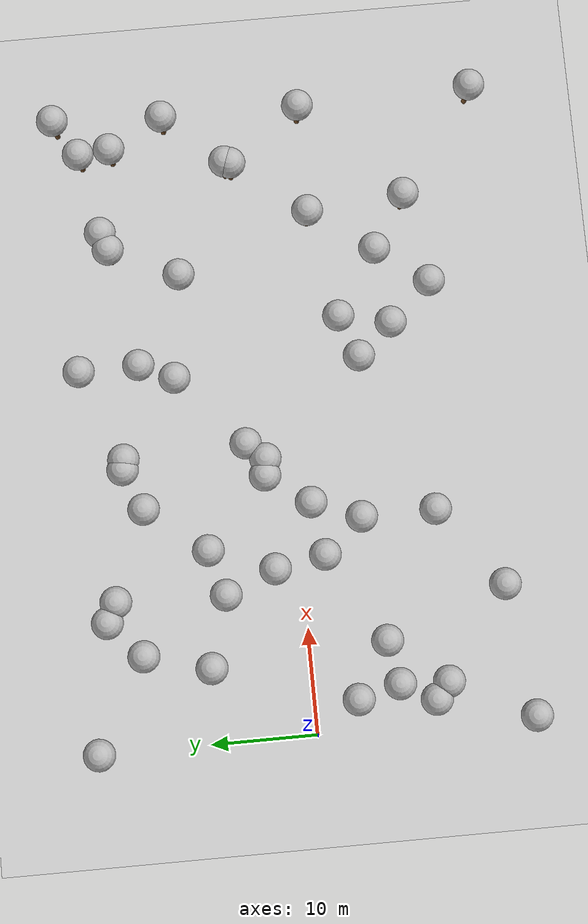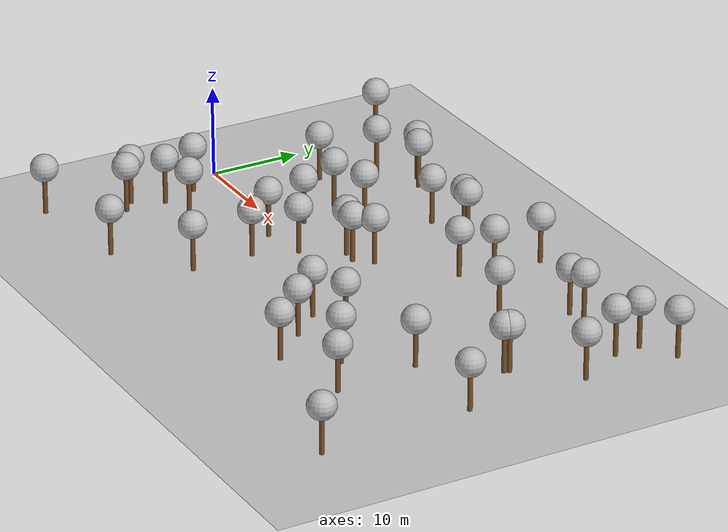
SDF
<sdf version='1.7'>
            <world name='default'>
                <light name='sun' type='directional'>
                <cast_shadows>1</cast_shadows>
                <pose>0 0 10 0 -0 0</pose>
                <diffuse>0.8 0.8 0.8 1</diffuse>
                <specular>0.2 0.2 0.2 1</specular>
                <attenuation>
                    <range>1000</range>
                    <constant>0.9</constant>
                    <linear>0.01</linear>
                    <quadratic>0.001</quadratic>
                </attenuation>
                <direction>-0.5 0.1 -0.9</direction>
                <spot>
                    <inner_angle>0</inner_angle>
                    <outer_angle>0</outer_angle>
                    <falloff>0</falloff>
                </spot>
                </light>
                <model name='ground_plane'>
                <static>1</static>
                <link name='link'>
                    <collision name='collision'>
                    <geometry>
                        <plane>
                        <normal>0 0 1</normal>
                        <size>100 100</size>
                        </plane>
                    </geometry>
                    <surface>
                        <contact>
                        <collide_bitmask>65535</collide_bitmask>
                        <ode/>
                        </contact>
                        <friction>
                        <ode>
                            <mu>100</mu>
                            <mu2>50</mu2>
                        </ode>
                        <torsional>
                            <ode/>
                        </torsional>
                        </friction>
                        <bounce/>
                    </surface>
                    <max_contacts>10</max_contacts>
                    </collision>
                    <visual name='visual'>
                    <cast_shadows>0</cast_shadows>
                    <geometry>
                        <plane>
                        <normal>0 0 1</normal>
                        <size>100 100</size>
                        </plane>
                    </geometry>
                    <material>
                        <script>
                        <uri>file://media/materials/scripts/gazebo.material</uri>
                        <name>Gazebo/Grey</name>
                        </script>
                    </material>
                    </visual>
                    <self_collide>0</self_collide>
                    <enable_wind>0</enable_wind>
                    <kinematic>0</kinematic>
                </link>
                </model>
                <gravity>0 0 -9.8</gravity>
                <magnetic_field>6e-06 2.3e-05 -4.2e-05</magnetic_field>
                <atmosphere type='adiabatic'/>
                <physics type='ode'>
                <max_step_size>0.001</max_step_size>
                <real_time_factor>1</real_time_factor>
                <real_time_update_rate>1000</real_time_update_rate>
                </physics>
                <scene>
                <ambient>0.4 0.4 0.4 1</ambient>
                <background>0.7 0.7 0.7 1</background>
                <shadows>1</shadows>
                </scene>
                <wind/>
                <spherical_coordinates>
                <surface_model>EARTH_WGS84</surface_model>
                <latitude_deg>0</latitude_deg>
                <longitude_deg>0</longitude_deg>
                <elevation>0</elevation>
                <heading_deg>0</heading_deg>
                </spherical_coordinates>

    <model name='tree_simple498'>
      <static>1</static>
      <link name='link'>
        <pose frame=''>0 0 0.1 0 -0 0</pose>
        <collision name='collision_trunk'>
          <pose frame=''>0 0 2 0 -0 0</pose>
          <geometry>
            <cylinder>
              <radius>0.25</radius>
              <length>4</length>
            </cylinder>
          </geometry>
        </collision>
        <collision name='collision_treetop'>
          <pose frame=''>0 0 5.2 0 -0 0</pose>
          <geometry>
            <sphere>
              <radius>1.5</radius>
            </sphere>
          </geometry>
        </collision>
        <visual name='trunk'>
          <pose frame=''>0 0 2 0 -0 0</pose>
          <geometry>
            <cylinder>
              <radius>0.25</radius>
              <length>4</length>
            </cylinder>
          </geometry>
          <material>
            <script>
              <uri>model://tree_simple/scripts</uri>
              <uri>model://tree_simple/materials/textures</uri>
              <name>TreeSimple/Trunk</name>
            </script>
          </material>
        </visual>
        <visual name='treetop'>
          <pose frame=''>0 0 5.2 0 -0 0</pose>
          <geometry>
            <sphere>
              <radius>1.5</radius>
            </sphere>
          </geometry>
          <material>
            <script>
              <uri>model://tree_simple/scripts</uri>
              <uri>model://tree_simple/materials/textures</uri>
              <name>TreeSimple/Treetop</name>
            </script>
          </material>
        </visual>
        <self_collide>0</self_collide>
        <kinematic>0</kinematic>
      </link>
      <pose frame=''>0.0 20.0 0 0 -0 0</pose>
    </model>
        <model name='tree_simple497'>
      <static>1</static>
      <link name='link'>
        <pose frame=''>0 0 0.1 0 -0 0</pose>
        <collision name='collision_trunk'>
          <pose frame=''>0 0 2 0 -0 0</pose>
          <geometry>
            <cylinder>
              <radius>0.25</radius>
              <length>4</length>
            </cylinder>
          </geometry>
        </collision>
        <collision name='collision_treetop'>
          <pose frame=''>0 0 5.2 0 -0 0</pose>
          <geometry>
            <sphere>
              <radius>1.5</radius>
            </sphere>
          </geometry>
        </collision>
        <visual name='trunk'>
          <pose frame=''>0 0 2 0 -0 0</pose>
          <geometry>
            <cylinder>
              <radius>0.25</radius>
              <length>4</length>
            </cylinder>
          </geometry>
          <material>
            <script>
              <uri>model://tree_simple/scripts</uri>
              <uri>model://tree_simple/materials/textures</uri>
              <name>TreeSimple/Trunk</name>
            </script>
          </material>
        </visual>
        <visual name='treetop'>
          <pose frame=''>0 0 5.2 0 -0 0</pose>
          <geometry>
            <sphere>
              <radius>1.5</radius>
            </sphere>
          </geometry>
          <material>
            <script>
              <uri>model://tree_simple/scripts</uri>
              <uri>model://tree_simple/materials/textures</uri>
              <name>TreeSimple/Treetop</name>
            </script>
          </material>
        </visual>
        <self_collide>0</self_collide>
        <kinematic>0</kinematic>
      </link>
      <pose frame=''>0.0 -20.0 0 0 -0 0</pose>
    </model>
        <model name='tree_simple496'>
      <static>1</static>
      <link name='link'>
        <pose frame=''>0 0 0.1 0 -0 0</pose>
        <collision name='collision_trunk'>
          <pose frame=''>0 0 2 0 -0 0</pose>
          <geometry>
            <cylinder>
              <radius>0.25</radius>
              <length>4</length>
            </cylinder>
          </geometry>
        </collision>
        <collision name='collision_treetop'>
          <pose frame=''>0 0 5.2 0 -0 0</pose>
          <geometry>
            <sphere>
              <radius>1.5</radius>
            </sphere>
          </geometry>
        </collision>
        <visual name='trunk'>
          <pose frame=''>0 0 2 0 -0 0</pose>
          <geometry>
            <cylinder>
              <radius>0.25</radius>
              <length>4</length>
            </cylinder>
          </geometry>
          <material>
            <script>
              <uri>model://tree_simple/scripts</uri>
              <uri>model://tree_simple/materials/textures</uri>
              <name>TreeSimple/Trunk</name>
            </script>
          </material>
        </visual>
        <visual name='treetop'>
          <pose frame=''>0 0 5.2 0 -0 0</pose>
          <geometry>
            <sphere>
              <radius>1.5</radius>
            </sphere>
          </geometry>
          <material>
            <script>
              <uri>model://tree_simple/scripts</uri>
              <uri>model://tree_simple/materials/textures</uri>
              <name>TreeSimple/Treetop</name>
            </script>
          </material>
        </visual>
        <self_collide>0</self_collide>
        <kinematic>0</kinematic>
      </link>
      <pose frame=''>60.0 20.0 0 0 -0 0</pose>
    </model>
        <model name='tree_simple495'>
      <static>1</static>
      <link name='link'>
        <pose frame=''>0 0 0.1 0 -0 0</pose>
        <collision name='collision_trunk'>
          <pose frame=''>0 0 2 0 -0 0</pose>
          <geometry>
            <cylinder>
              <radius>0.25</radius>
              <length>4</length>
            </cylinder>
          </geometry>
        </collision>
        <collision name='collision_treetop'>
          <pose frame=''>0 0 5.2 0 -0 0</pose>
          <geometry>
            <sphere>
              <radius>1.5</radius>
            </sphere>
          </geometry>
        </collision>
        <visual name='trunk'>
          <pose frame=''>0 0 2 0 -0 0</pose>
          <geometry>
            <cylinder>
              <radius>0.25</radius>
              <length>4</length>
            </cylinder>
          </geometry>
          <material>
            <script>
              <uri>model://tree_simple/scripts</uri>
              <uri>model://tree_simple/materials/textures</uri>
              <name>TreeSimple/Trunk</name>
            </script>
          </material>
        </visual>
        <visual name='treetop'>
          <pose frame=''>0 0 5.2 0 -0 0</pose>
          <geometry>
            <sphere>
              <radius>1.5</radius>
            </sphere>
          </geometry>
          <material>
            <script>
              <uri>model://tree_simple/scripts</uri>
              <uri>model://tree_simple/materials/textures</uri>
              <name>TreeSimple/Treetop</name>
            </script>
          </material>
        </visual>
        <self_collide>0</self_collide>
        <kinematic>0</kinematic>
      </link>
      <pose frame=''>60.0 -20.0 0 0 -0 0</pose>
    </model>
    <model name="tree_8_0"><pose frame="">19.66 -12.7 0 0 -0 0</pose><static>1</static><link name="link"><pose frame="">0 0 0.1 0 -0 0</pose><collision name="collision_trunk"><pose frame="">0 0 2 0 -0 0</pose><geometry><cylinder><radius>0.25</radius><length>4</length></cylinder></geometry></collision><collision name="collision_treetop"><pose frame="">0 0 5.2 0 -0 0</pose><geometry><sphere><radius>1.5</radius></sphere></geometry></collision><visual name="trunk"><pose frame="">0 0 2 0 -0 0</pose><geometry><cylinder><radius>0.25</radius><length>4</length></cylinder></geometry><material><script><uri>model://tree_simple/scripts</uri><uri>model://tree_simple/materials/textures</uri><name>TreeSimple/Trunk</name></script></material></visual><visual name="treetop"><pose frame="">0 0 5.2 0 -0 0</pose><geometry><sphere><radius>1.5</radius></sphere></geometry><material><script><uri>model://tree_simple/scripts</uri><uri>model://tree_simple/materials/textures</uri><name>TreeSimple/Treetop</name></script></material></visual><self_collide>0</self_collide><kinematic>0</kinematic></link></model><model name="tree_8_1"><pose frame="">38.66 -5.45 0 0 -0 0</pose><static>1</static><link name="link"><pose frame="">0 0 0.1 0 -0 0</pose><collision name="collision_trunk"><pose frame="">0 0 2 0 -0 0</pose><geometry><cylinder><radius>0.25</radius><length>4</length></cylinder></geometry></collision><collision name="collision_treetop"><pose frame="">0 0 5.2 0 -0 0</pose><geometry><sphere><radius>1.5</radius></sphere></geometry></collision><visual name="trunk"><pose frame="">0 0 2 0 -0 0</pose><geometry><cylinder><radius>0.25</radius><length>4</length></cylinder></geometry><material><script><uri>model://tree_simple/scripts</uri><uri>model://tree_simple/materials/textures</uri><name>TreeSimple/Trunk</name></script></material></visual><visual name="treetop"><pose frame="">0 0 5.2 0 -0 0</pose><geometry><sphere><radius>1.5</radius></sphere></geometry><material><script><uri>model://tree_simple/scripts</uri><uri>model://tree_simple/materials/textures</uri><name>TreeSimple/Treetop</name></script></material></visual><self_collide>0</self_collide><kinematic>0</kinematic></link></model><model name="tree_8_2"><pose frame="">15.45 2.56 0 0 -0 0</pose><static>1</static><link name="link"><pose frame="">0 0 0.1 0 -0 0</pose><collision name="collision_trunk"><pose frame="">0 0 2 0 -0 0</pose><geometry><cylinder><radius>0.25</radius><length>4</length></cylinder></geometry></collision><collision name="collision_treetop"><pose frame="">0 0 5.2 0 -0 0</pose><geometry><sphere><radius>1.5</radius></sphere></geometry></collision><visual name="trunk"><pose frame="">0 0 2 0 -0 0</pose><geometry><cylinder><radius>0.25</radius><length>4</length></cylinder></geometry><material><script><uri>model://tree_simple/scripts</uri><uri>model://tree_simple/materials/textures</uri><name>TreeSimple/Trunk</name></script></material></visual><visual name="treetop"><pose frame="">0 0 5.2 0 -0 0</pose><geometry><sphere><radius>1.5</radius></sphere></geometry><material><script><uri>model://tree_simple/scripts</uri><uri>model://tree_simple/materials/textures</uri><name>TreeSimple/Treetop</name></script></material></visual><self_collide>0</self_collide><kinematic>0</kinematic></link></model><model name="tree_8_3"><pose frame="">22.03 14.23 0 0 -0 0</pose><static>1</static><link name="link"><pose frame="">0 0 0.1 0 -0 0</pose><collision name="collision_trunk"><pose frame="">0 0 2 0 -0 0</pose><geometry><cylinder><radius>0.25</radius><length>4</length></cylinder></geometry></collision><collision name="collision_treetop"><pose frame="">0 0 5.2 0 -0 0</pose><geometry><sphere><radius>1.5</radius></sphere></geometry></collision><visual name="trunk"><pose frame="">0 0 2 0 -0 0</pose><geometry><cylinder><radius>0.25</radius><length>4</length></cylinder></geometry><material><script><uri>model://tree_simple/scripts</uri><uri>model://tree_simple/materials/textures</uri><name>TreeSimple/Trunk</name></script></material></visual><visual name="treetop"><pose frame="">0 0 5.2 0 -0 0</pose><geometry><sphere><radius>1.5</radius></sphere></geometry><material><script><uri>model://tree_simple/scripts</uri><uri>model://tree_simple/materials/textures</uri><name>TreeSimple/Treetop</name></script></material></visual><self_collide>0</self_collide><kinematic>0</kinematic></link></model><model name="tree_8_4"><pose frame="">17.7 8.58 0 0 -0 0</pose><static>1</static><link name="link"><pose frame="">0 0 0.1 0 -0 0</pose><collision name="collision_trunk"><pose frame="">0 0 2 0 -0 0</pose><geometry><cylinder><radius>0.25</radius><length>4</length></cylinder></geometry></collision><collision name="collision_treetop"><pose frame="">0 0 5.2 0 -0 0</pose><geometry><sphere><radius>1.5</radius></sphere></geometry></collision><visual name="trunk"><pose frame="">0 0 2 0 -0 0</pose><geometry><cylinder><radius>0.25</radius><length>4</length></cylinder></geometry><material><script><uri>model://tree_simple/scripts</uri><uri>model://tree_simple/materials/textures</uri><name>TreeSimple/Trunk</name></script></material></visual><visual name="treetop"><pose frame="">0 0 5.2 0 -0 0</pose><geometry><sphere><radius>1.5</radius></sphere></geometry><material><script><uri>model://tree_simple/scripts</uri><uri>model://tree_simple/materials/textures</uri><name>TreeSimple/Treetop</name></script></material></visual><self_collide>0</self_collide><kinematic>0</kinematic></link></model><model name="tree_8_5"><pose frame="">56.46 17.79 0 0 -0 0</pose><static>1</static><link name="link"><pose frame="">0 0 0.1 0 -0 0</pose><collision name="collision_trunk"><pose frame="">0 0 2 0 -0 0</pose><geometry><cylinder><radius>0.25</radius><length>4</length></cylinder></geometry></collision><collision name="collision_treetop"><pose frame="">0 0 5.2 0 -0 0</pose><geometry><sphere><radius>1.5</radius></sphere></geometry></collision><visual name="trunk"><pose frame="">0 0 2 0 -0 0</pose><geometry><cylinder><radius>0.25</radius><length>4</length></cylinder></geometry><material><script><uri>model://tree_simple/scripts</uri><uri>model://tree_simple/materials/textures</uri><name>TreeSimple/Trunk</name></script></material></visual><visual name="treetop"><pose frame="">0 0 5.2 0 -0 0</pose><geometry><sphere><radius>1.5</radius></sphere></geometry><material><script><uri>model://tree_simple/scripts</uri><uri>model://tree_simple/materials/textures</uri><name>TreeSimple/Treetop</name></script></material></visual><self_collide>0</self_collide><kinematic>0</kinematic></link></model><model name="tree_8_6"><pose frame="">34.68 -7.02 0 0 -0 0</pose><static>1</static><link name="link"><pose frame="">0 0 0.1 0 -0 0</pose><collision name="collision_trunk"><pose frame="">0 0 2 0 -0 0</pose><geometry><cylinder><radius>0.25</radius><length>4</length></cylinder></geometry></collision><collision name="collision_treetop"><pose frame="">0 0 5.2 0 -0 0</pose><geometry><sphere><radius>1.5</radius></sphere></geometry></collision><visual name="trunk"><pose frame="">0 0 2 0 -0 0</pose><geometry><cylinder><radius>0.25</radius><length>4</length></cylinder></geometry><material><script><uri>model://tree_simple/scripts</uri><uri>model://tree_simple/materials/textures</uri><name>TreeSimple/Trunk</name></script></material></visual><visual name="treetop"><pose frame="">0 0 5.2 0 -0 0</pose><geometry><sphere><radius>1.5</radius></sphere></geometry><material><script><uri>model://tree_simple/scripts</uri><uri>model://tree_simple/materials/textures</uri><name>TreeSimple/Treetop</name></script></material></visual><self_collide>0</self_collide><kinematic>0</kinematic></link></model><model name="tree_8_7"><pose frame="">13.69 17.45 0 0 -0 0</pose><static>1</static><link name="link"><pose frame="">0 0 0.1 0 -0 0</pose><collision name="collision_trunk"><pose frame="">0 0 2 0 -0 0</pose><geometry><cylinder><radius>0.25</radius><length>4</length></cylinder></geometry></collision><collision name="collision_treetop"><pose frame="">0 0 5.2 0 -0 0</pose><geometry><sphere><radius>1.5</radius></sphere></geometry></collision><visual name="trunk"><pose frame="">0 0 2 0 -0 0</pose><geometry><cylinder><radius>0.25</radius><length>4</length></cylinder></geometry><material><script><uri>model://tree_simple/scripts</uri><uri>model://tree_simple/materials/textures</uri><name>TreeSimple/Trunk</name></script></material></visual><visual name="treetop"><pose frame="">0 0 5.2 0 -0 0</pose><geometry><sphere><radius>1.5</radius></sphere></geometry><material><script><uri>model://tree_simple/scripts</uri><uri>model://tree_simple/materials/textures</uri><name>TreeSimple/Treetop</name></script></material></visual><self_collide>0</self_collide><kinematic>0</kinematic></link></model><model name="tree_8_8"><pose frame="">54.54 3.97 0 0 -0 0</pose><static>1</static><link name="link"><pose frame="">0 0 0.1 0 -0 0</pose><collision name="collision_trunk"><pose frame="">0 0 2 0 -0 0</pose><geometry><cylinder><radius>0.25</radius><length>4</length></cylinder></geometry></collision><collision name="collision_treetop"><pose frame="">0 0 5.2 0 -0 0</pose><geometry><sphere><radius>1.5</radius></sphere></geometry></collision><visual name="trunk"><pose frame="">0 0 2 0 -0 0</pose><geometry><cylinder><radius>0.25</radius><length>4</length></cylinder></geometry><material><script><uri>model://tree_simple/scripts</uri><uri>model://tree_simple/materials/textures</uri><name>TreeSimple/Trunk</name></script></material></visual><visual name="treetop"><pose frame="">0 0 5.2 0 -0 0</pose><geometry><sphere><radius>1.5</radius></sphere></geometry><material><script><uri>model://tree_simple/scripts</uri><uri>model://tree_simple/materials/textures</uri><name>TreeSimple/Treetop</name></script></material></visual><self_collide>0</self_collide><kinematic>0</kinematic></link></model><model name="tree_8_9"><pose frame="">16.36 -2.14 0 0 -0 0</pose><static>1</static><link name="link"><pose frame="">0 0 0.1 0 -0 0</pose><collision name="collision_trunk"><pose frame="">0 0 2 0 -0 0</pose><geometry><cylinder><radius>0.25</radius><length>4</length></cylinder></geometry></collision><collision name="collision_treetop"><pose frame="">0 0 5.2 0 -0 0</pose><geometry><sphere><radius>1.5</radius></sphere></geometry></collision><visual name="trunk"><pose frame="">0 0 2 0 -0 0</pose><geometry><cylinder><radius>0.25</radius><length>4</length></cylinder></geometry><material><script><uri>model://tree_simple/scripts</uri><uri>model://tree_simple/materials/textures</uri><name>TreeSimple/Trunk</name></script></material></visual><visual name="treetop"><pose frame="">0 0 5.2 0 -0 0</pose><geometry><sphere><radius>1.5</radius></sphere></geometry><material><script><uri>model://tree_simple/scripts</uri><uri>model://tree_simple/materials/textures</uri><name>TreeSimple/Treetop</name></script></material></visual><self_collide>0</self_collide><kinematic>0</kinematic></link></model><model name="tree_8_10"><pose frame="">2.27 -11.07 0 0 -0 0</pose><static>1</static><link name="link"><pose frame="">0 0 0.1 0 -0 0</pose><collision name="collision_trunk"><pose frame="">0 0 2 0 -0 0</pose><geometry><cylinder><radius>0.25</radius><length>4</length></cylinder></geometry></collision><collision name="collision_treetop"><pose frame="">0 0 5.2 0 -0 0</pose><geometry><sphere><radius>1.5</radius></sphere></geometry></collision><visual name="trunk"><pose frame="">0 0 2 0 -0 0</pose><geometry><cylinder><radius>0.25</radius><length>4</length></cylinder></geometry><material><script><uri>model://tree_simple/scripts</uri><uri>model://tree_simple/materials/textures</uri><name>TreeSimple/Trunk</name></script></material></visual><visual name="treetop"><pose frame="">0 0 5.2 0 -0 0</pose><geometry><sphere><radius>1.5</radius></sphere></geometry><material><script><uri>model://tree_simple/scripts</uri><uri>model://tree_simple/materials/textures</uri><name>TreeSimple/Treetop</name></script></material></visual><self_collide>0</self_collide><kinematic>0</kinematic></link></model><model name="tree_8_11"><pose frame="">2.88 -3.97 0 0 -0 0</pose><static>1</static><link name="link"><pose frame="">0 0 0.1 0 -0 0</pose><collision name="collision_trunk"><pose frame="">0 0 2 0 -0 0</pose><geometry><cylinder><radius>0.25</radius><length>4</length></cylinder></geometry></collision><collision name="collision_treetop"><pose frame="">0 0 5.2 0 -0 0</pose><geometry><sphere><radius>1.5</radius></sphere></geometry></collision><visual name="trunk"><pose frame="">0 0 2 0 -0 0</pose><geometry><cylinder><radius>0.25</radius><length>4</length></cylinder></geometry><material><script><uri>model://tree_simple/scripts</uri><uri>model://tree_simple/materials/textures</uri><name>TreeSimple/Trunk</name></script></material></visual><visual name="treetop"><pose frame="">0 0 5.2 0 -0 0</pose><geometry><sphere><radius>1.5</radius></sphere></geometry><material><script><uri>model://tree_simple/scripts</uri><uri>model://tree_simple/materials/textures</uri><name>TreeSimple/Treetop</name></script></material></visual><self_collide>0</self_collide><kinematic>0</kinematic></link></model><model name="tree_8_12"><pose frame="">25.88 15.88 0 0 -0 0</pose><static>1</static><link name="link"><pose frame="">0 0 0.1 0 -0 0</pose><collision name="collision_trunk"><pose frame="">0 0 2 0 -0 0</pose><geometry><cylinder><radius>0.25</radius><length>4</length></cylinder></geometry></collision><collision name="collision_treetop"><pose frame="">0 0 5.2 0 -0 0</pose><geometry><sphere><radius>1.5</radius></sphere></geometry></collision><visual name="trunk"><pose frame="">0 0 2 0 -0 0</pose><geometry><cylinder><radius>0.25</radius><length>4</length></cylinder></geometry><material><script><uri>model://tree_simple/scripts</uri><uri>model://tree_simple/materials/textures</uri><name>TreeSimple/Trunk</name></script></material></visual><visual name="treetop"><pose frame="">0 0 5.2 0 -0 0</pose><geometry><sphere><radius>1.5</radius></sphere></geometry><material><script><uri>model://tree_simple/scripts</uri><uri>model://tree_simple/materials/textures</uri><name>TreeSimple/Treetop</name></script></material></visual><self_collide>0</self_collide><kinematic>0</kinematic></link></model><model name="tree_8_13"><pose frame="">3.97 -7.87 0 0 -0 0</pose><static>1</static><link name="link"><pose frame="">0 0 0.1 0 -0 0</pose><collision name="collision_trunk"><pose frame="">0 0 2 0 -0 0</pose><geometry><cylinder><radius>0.25</radius><length>4</length></cylinder></geometry></collision><collision name="collision_treetop"><pose frame="">0 0 5.2 0 -0 0</pose><geometry><sphere><radius>1.5</radius></sphere></geometry></collision><visual name="trunk"><pose frame="">0 0 2 0 -0 0</pose><geometry><cylinder><radius>0.25</radius><length>4</length></cylinder></geometry><material><script><uri>model://tree_simple/scripts</uri><uri>model://tree_simple/materials/textures</uri><name>TreeSimple/Trunk</name></script></material></visual><visual name="treetop"><pose frame="">0 0 5.2 0 -0 0</pose><geometry><sphere><radius>1.5</radius></sphere></geometry><material><script><uri>model://tree_simple/scripts</uri><uri>model://tree_simple/materials/textures</uri><name>TreeSimple/Treetop</name></script></material></visual><self_collide>0</self_collide><kinematic>0</kinematic></link></model><model name="tree_8_14"><pose frame="">35.63 13.64 0 0 -0 0</pose><static>1</static><link name="link"><pose frame="">0 0 0.1 0 -0 0</pose><collision name="collision_trunk"><pose frame="">0 0 2 0 -0 0</pose><geometry><cylinder><radius>0.25</radius><length>4</length></cylinder></geometry></collision><collision name="collision_treetop"><pose frame="">0 0 5.2 0 -0 0</pose><geometry><sphere><radius>1.5</radius></sphere></geometry></collision><visual name="trunk"><pose frame="">0 0 2 0 -0 0</pose><geometry><cylinder><radius>0.25</radius><length>4</length></cylinder></geometry><material><script><uri>model://tree_simple/scripts</uri><uri>model://tree_simple/materials/textures</uri><name>TreeSimple/Trunk</name></script></material></visual><visual name="treetop"><pose frame="">0 0 5.2 0 -0 0</pose><geometry><sphere><radius>1.5</radius></sphere></geometry><material><script><uri>model://tree_simple/scripts</uri><uri>model://tree_simple/materials/textures</uri><name>TreeSimple/Treetop</name></script></material></visual><self_collide>0</self_collide><kinematic>0</kinematic></link></model><model name="tree_8_15"><pose frame="">59.51 9.64 0 0 -0 0</pose><static>1</static><link name="link"><pose frame="">0 0 0.1 0 -0 0</pose><collision name="collision_trunk"><pose frame="">0 0 2 0 -0 0</pose><geometry><cylinder><radius>0.25</radius><length>4</length></cylinder></geometry></collision><collision name="collision_treetop"><pose frame="">0 0 5.2 0 -0 0</pose><geometry><sphere><radius>1.5</radius></sphere></geometry></collision><visual name="trunk"><pose frame="">0 0 2 0 -0 0</pose><geometry><cylinder><radius>0.25</radius><length>4</length></cylinder></geometry><material><script><uri>model://tree_simple/scripts</uri><uri>model://tree_simple/materials/textures</uri><name>TreeSimple/Trunk</name></script></material></visual><visual name="treetop"><pose frame="">0 0 5.2 0 -0 0</pose><geometry><sphere><radius>1.5</radius></sphere></geometry><material><script><uri>model://tree_simple/scripts</uri><uri>model://tree_simple/materials/textures</uri><name>TreeSimple/Treetop</name></script></material></visual><self_collide>0</self_collide><kinematic>0</kinematic></link></model><model name="tree_8_16"><pose frame="">3.78 -12.34 0 0 -0 0</pose><static>1</static><link name="link"><pose frame="">0 0 0.1 0 -0 0</pose><collision name="collision_trunk"><pose frame="">0 0 2 0 -0 0</pose><geometry><cylinder><radius>0.25</radius><length>4</length></cylinder></geometry></collision><collision name="collision_treetop"><pose frame="">0 0 5.2 0 -0 0</pose><geometry><sphere><radius>1.5</radius></sphere></geometry></collision><visual name="trunk"><pose frame="">0 0 2 0 -0 0</pose><geometry><cylinder><radius>0.25</radius><length>4</length></cylinder></geometry><material><script><uri>model://tree_simple/scripts</uri><uri>model://tree_simple/materials/textures</uri><name>TreeSimple/Trunk</name></script></material></visual><visual name="treetop"><pose frame="">0 0 5.2 0 -0 0</pose><geometry><sphere><radius>1.5</radius></sphere></geometry><material><script><uri>model://tree_simple/scripts</uri><uri>model://tree_simple/materials/textures</uri><name>TreeSimple/Treetop</name></script></material></visual><self_collide>0</self_collide><kinematic>0</kinematic></link></model><model name="tree_8_17"><pose frame="">7.99 -7.09 0 0 -0 0</pose><static>1</static><link name="link"><pose frame="">0 0 0.1 0 -0 0</pose><collision name="collision_trunk"><pose frame="">0 0 2 0 -0 0</pose><geometry><cylinder><radius>0.25</radius><length>4</length></cylinder></geometry></collision><collision name="collision_treetop"><pose frame="">0 0 5.2 0 -0 0</pose><geometry><sphere><radius>1.5</radius></sphere></geometry></collision><visual name="trunk"><pose frame="">0 0 2 0 -0 0</pose><geometry><cylinder><radius>0.25</radius><length>4</length></cylinder></geometry><material><script><uri>model://tree_simple/scripts</uri><uri>model://tree_simple/materials/textures</uri><name>TreeSimple/Trunk</name></script></material></visual><visual name="treetop"><pose frame="">0 0 5.2 0 -0 0</pose><geometry><sphere><radius>1.5</radius></sphere></geometry><material><script><uri>model://tree_simple/scripts</uri><uri>model://tree_simple/materials/textures</uri><name>TreeSimple/Treetop</name></script></material></visual><self_collide>0</self_collide><kinematic>0</kinematic></link></model><model name="tree_8_18"><pose frame="">49.07 -3.47 0 0 -0 0</pose><static>1</static><link name="link"><pose frame="">0 0 0.1 0 -0 0</pose><collision name="collision_trunk"><pose frame="">0 0 2 0 -0 0</pose><geometry><cylinder><radius>0.25</radius><length>4</length></cylinder></geometry></collision><collision name="collision_treetop"><pose frame="">0 0 5.2 0 -0 0</pose><geometry><sphere><radius>1.5</radius></sphere></geometry></collision><visual name="trunk"><pose frame="">0 0 2 0 -0 0</pose><geometry><cylinder><radius>0.25</radius><length>4</length></cylinder></geometry><material><script><uri>model://tree_simple/scripts</uri><uri>model://tree_simple/materials/textures</uri><name>TreeSimple/Trunk</name></script></material></visual><visual name="treetop"><pose frame="">0 0 5.2 0 -0 0</pose><geometry><sphere><radius>1.5</radius></sphere></geometry><material><script><uri>model://tree_simple/scripts</uri><uri>model://tree_simple/materials/textures</uri><name>TreeSimple/Treetop</name></script></material></visual><self_collide>0</self_collide><kinematic>0</kinematic></link></model><model name="tree_8_19"><pose frame="">46.94 15.65 0 0 -0 0</pose><static>1</static><link name="link"><pose frame="">0 0 0.1 0 -0 0</pose><collision name="collision_trunk"><pose frame="">0 0 2 0 -0 0</pose><geometry><cylinder><radius>0.25</radius><length>4</length></cylinder></geometry></collision><collision name="collision_treetop"><pose frame="">0 0 5.2 0 -0 0</pose><geometry><sphere><radius>1.5</radius></sphere></geometry></collision><visual name="trunk"><pose frame="">0 0 2 0 -0 0</pose><geometry><cylinder><radius>0.25</radius><length>4</length></cylinder></geometry><material><script><uri>model://tree_simple/scripts</uri><uri>model://tree_simple/materials/textures</uri><name>TreeSimple/Trunk</name></script></material></visual><visual name="treetop"><pose frame="">0 0 5.2 0 -0 0</pose><geometry><sphere><radius>1.5</radius></sphere></geometry><material><script><uri>model://tree_simple/scripts</uri><uri>model://tree_simple/materials/textures</uri><name>TreeSimple/Treetop</name></script></material></visual><self_collide>0</self_collide><kinematic>0</kinematic></link></model><model name="tree_8_20"><pose frame="">25.77 2.58 0 0 -0 0</pose><static>1</static><link name="link"><pose frame="">0 0 0.1 0 -0 0</pose><collision name="collision_trunk"><pose frame="">0 0 2 0 -0 0</pose><geometry><cylinder><radius>0.25</radius><length>4</length></cylinder></geometry></collision><collision name="collision_treetop"><pose frame="">0 0 5.2 0 -0 0</pose><geometry><sphere><radius>1.5</radius></sphere></geometry></collision><visual name="trunk"><pose frame="">0 0 2 0 -0 0</pose><geometry><cylinder><radius>0.25</radius><length>4</length></cylinder></geometry><material><script><uri>model://tree_simple/scripts</uri><uri>model://tree_simple/materials/textures</uri><name>TreeSimple/Trunk</name></script></material></visual><visual name="treetop"><pose frame="">0 0 5.2 0 -0 0</pose><geometry><sphere><radius>1.5</radius></sphere></geometry><material><script><uri>model://tree_simple/scripts</uri><uri>model://tree_simple/materials/textures</uri><name>TreeSimple/Treetop</name></script></material></visual><self_collide>0</self_collide><kinematic>0</kinematic></link></model>
    <model name="tree_1_21">
  <pose frame="">44.85 -9.45 0 0 -0 0</pose>
  <static>1</static>
  <link name="link">
    <pose frame="">0 0 0.1 0 -0 0</pose>
    <collision name="collision_trunk"><pose frame="">0 0 2 0 -0 0</pose><geometry><cylinder><radius>0.25</radius><length>4</length></cylinder></geometry></collision>
    <collision name="collision_treetop"><pose frame="">0 0 5.2 0 -0 0</pose><geometry><sphere><radius>1.5</radius></sphere></geometry></collision>
    <visual name="trunk"><pose frame="">0 0 2 0 -0 0</pose><geometry><cylinder><radius>0.25</radius><length>4</length></cylinder></geometry><material><script><uri>model://tree_simple/scripts</uri><uri>model://tree_simple/materials/textures</uri><name>TreeSimple/Trunk</name></script></material></visual>
    <visual name="treetop"><pose frame="">0 0 5.2 0 -0 0</pose><geometry><sphere><radius>1.5</radius></sphere></geometry><material><script><uri>model://tree_simple/scripts</uri><uri>model://tree_simple/materials/textures</uri><name>TreeSimple/Treetop</name></script></material></visual>
    <self_collide>0</self_collide><kinematic>0</kinematic>
  </link>
</model>
<model name="tree_1_22">
  <pose frame="">27.35 4.28 0 0 -0 0</pose>
  <static>1</static>
  <link name="link">
    <pose frame="">0 0 0.1 0 -0 0</pose>
    <collision name="collision_trunk"><pose frame="">0 0 2 0 -0 0</pose><geometry><cylinder><radius>0.25</radius><length>4</length></cylinder></geometry></collision>
    <collision name="collision_treetop"><pose frame="">0 0 5.2 0 -0 0</pose><geometry><sphere><radius>1.5</radius></sphere></geometry></collision>
    <visual name="trunk"><pose frame="">0 0 2 0 -0 0</pose><geometry><cylinder><radius>0.25</radius><length>4</length></cylinder></geometry><material><script><uri>model://tree_simple/scripts</uri><uri>model://tree_simple/materials/textures</uri><name>TreeSimple/Trunk</name></script></material></visual>
    <visual name="treetop"><pose frame="">0 0 5.2 0 -0 0</pose><geometry><sphere><radius>1.5</radius></sphere></geometry><material><script><uri>model://tree_simple/scripts</uri><uri>model://tree_simple/materials/textures</uri><name>TreeSimple/Treetop</name></script></material></visual>
    <self_collide>0</self_collide><kinematic>0</kinematic>
  </link>
</model>
<model name="tree_1_23">
  <pose frame="">12.18 -18.39 0 0 -0 0</pose>
  <static>1</static>
  <link name="link">
    <pose frame="">0 0 0.1 0 -0 0</pose>
    <collision name="collision_trunk"><pose frame="">0 0 2 0 -0 0</pose><geometry><cylinder><radius>0.25</radius><length>4</length></cylinder></geometry></collision>
    <collision name="collision_treetop"><pose frame="">0 0 5.2 0 -0 0</pose><geometry><sphere><radius>1.5</radius></sphere></geometry></collision>
    <visual name="trunk"><pose frame="">0 0 2 0 -0 0</pose><geometry><cylinder><radius>0.25</radius><length>4</length></cylinder></geometry><material><script><uri>model://tree_simple/scripts</uri><uri>model://tree_simple/materials/textures</uri><name>TreeSimple/Trunk</name></script></material></visual>
    <visual name="treetop"><pose frame="">0 0 5.2 0 -0 0</pose><geometry><sphere><radius>1.5</radius></sphere></geometry><material><script><uri>model://tree_simple/scripts</uri><uri>model://tree_simple/materials/textures</uri><name>TreeSimple/Treetop</name></script></material></visual>
    <self_collide>0</self_collide><kinematic>0</kinematic>
  </link>
</model>
<model name="tree_1_24">
  <pose frame="">48.64 16.27 0 0 -0 0</pose>
  <static>1</static>
  <link name="link">
    <pose frame="">0 0 0.1 0 -0 0</pose>
    <collision name="collision_trunk"><pose frame="">0 0 2 0 -0 0</pose><geometry><cylinder><radius>0.25</radius><length>4</length></cylinder></geometry></collision>
    <collision name="collision_treetop"><pose frame="">0 0 5.2 0 -0 0</pose><geometry><sphere><radius>1.5</radius></sphere></geometry></collision>
    <visual name="trunk"><pose frame="">0 0 2 0 -0 0</pose><geometry><cylinder><radius>0.25</radius><length>4</length></cylinder></geometry><material><script><uri>model://tree_simple/scripts</uri><uri>model://tree_simple/materials/textures</uri><name>TreeSimple/Trunk</name></script></material></visual>
    <visual name="treetop"><pose frame="">0 0 5.2 0 -0 0</pose><geometry><sphere><radius>1.5</radius></sphere></geometry><material><script><uri>model://tree_simple/scripts</uri><uri>model://tree_simple/materials/textures</uri><name>TreeSimple/Treetop</name></script></material></visual>
    <self_collide>0</self_collide><kinematic>0</kinematic>
  </link>
</model>
<model name="tree_1_25">
  <pose frame="">34.12 10.38 0 0 -0 0</pose>
  <static>1</static>
  <link name="link">
    <pose frame="">0 0 0.1 0 -0 0</pose>
    <collision name="collision_trunk"><pose frame="">0 0 2 0 -0 0</pose><geometry><cylinder><radius>0.25</radius><length>4</length></cylinder></geometry></collision>
    <collision name="collision_treetop"><pose frame="">0 0 5.2 0 -0 0</pose><geometry><sphere><radius>1.5</radius></sphere></geometry></collision>
    <visual name="trunk"><pose frame="">0 0 2 0 -0 0</pose><geometry><cylinder><radius>0.25</radius><length>4</length></cylinder></geometry><material><script><uri>model://tree_simple/scripts</uri><uri>model://tree_simple/materials/textures</uri><name>TreeSimple/Trunk</name></script></material></visual>
    <visual name="treetop"><pose frame="">0 0 5.2 0 -0 0</pose><geometry><sphere><radius>1.5</radius></sphere></geometry><material><script><uri>model://tree_simple/scripts</uri><uri>model://tree_simple/materials/textures</uri><name>TreeSimple/Treetop</name></script></material></visual>
    <self_collide>0</self_collide><kinematic>0</kinematic>
  </link>
</model>
<model name="tree_1_26">
  <pose frame="">19.57 -5.82 0 0 -0 0</pose>
  <static>1</static>
  <link name="link">
    <pose frame="">0 0 0.1 0 -0 0</pose>
    <collision name="collision_trunk"><pose frame="">0 0 2 0 -0 0</pose><geometry><cylinder><radius>0.25</radius><length>4</length></cylinder></geometry></collision>
    <collision name="collision_treetop"><pose frame="">0 0 5.2 0 -0 0</pose><geometry><sphere><radius>1.5</radius></sphere></geometry></collision>
    <visual name="trunk"><pose frame="">0 0 2 0 -0 0</pose><geometry><cylinder><radius>0.25</radius><length>4</length></cylinder></geometry><material><script><uri>model://tree_simple/scripts</uri><uri>model://tree_simple/materials/textures</uri><name>TreeSimple/Trunk</name></script></material></visual>
    <visual name="treetop"><pose frame="">0 0 5.2 0 -0 0</pose><geometry><sphere><radius>1.5</radius></sphere></geometry><material><script><uri>model://tree_simple/scripts</uri><uri>model://tree_simple/materials/textures</uri><name>TreeSimple/Treetop</name></script></material></visual>
    <self_collide>0</self_collide><kinematic>0</kinematic>
  </link>
</model>
<model name="tree_1_27">
  <pose frame="">54.36 3.45 0 0 -0 0</pose>
  <static>1</static>
  <link name="link">
    <pose frame="">0 0 0.1 0 -0 0</pose>
    <collision name="collision_trunk"><pose frame="">0 0 2 0 -0 0</pose><geometry><cylinder><radius>0.25</radius><length>4</length></cylinder></geometry></collision>
    <collision name="collision_treetop"><pose frame="">0 0 5.2 0 -0 0</pose><geometry><sphere><radius>1.5</radius></sphere></geometry></collision>
    <visual name="trunk"><pose frame="">0 0 2 0 -0 0</pose><geometry><cylinder><radius>0.25</radius><length>4</length></cylinder></geometry><material><script><uri>model://tree_simple/scripts</uri><uri>model://tree_simple/materials/textures</uri><name>TreeSimple/Trunk</name></script></material></visual>
    <visual name="treetop"><pose frame="">0 0 5.2 0 -0 0</pose><geometry><sphere><radius>1.5</radius></sphere></geometry><material><script><uri>model://tree_simple/scripts</uri><uri>model://tree_simple/materials/textures</uri><name>TreeSimple/Treetop</name></script></material></visual>
    <self_collide>0</self_collide><kinematic>0</kinematic>
  </link>
</model>
<model name="tree_1_28">
  <pose frame="">6.89 9.16 0 0 -0 0</pose>
  <static>1</static>
  <link name="link">
    <pose frame="">0 0 0.1 0 -0 0</pose>
    <collision name="collision_trunk"><pose frame="">0 0 2 0 -0 0</pose><geometry><cylinder><radius>0.25</radius><length>4</length></cylinder></geometry></collision>
    <collision name="collision_treetop"><pose frame="">0 0 5.2 0 -0 0</pose><geometry><sphere><radius>1.5</radius></sphere></geometry></collision>
    <visual name="trunk"><pose frame="">0 0 2 0 -0 0</pose><geometry><cylinder><radius>0.25</radius><length>4</length></cylinder></geometry><material><script><uri>model://tree_simple/scripts</uri><uri>model://tree_simple/materials/textures</uri><name>TreeSimple/Trunk</name></script></material></visual>
    <visual name="treetop"><pose frame="">0 0 5.2 0 -0 0</pose><geometry><sphere><radius>1.5</radius></sphere></geometry><material><script><uri>model://tree_simple/scripts</uri><uri>model://tree_simple/materials/textures</uri><name>TreeSimple/Treetop</name></script></material></visual>
    <self_collide>0</self_collide><kinematic>0</kinematic>
  </link>
</model>
<model name="tree_1_29">
  <pose frame="">41.27 -14.28 0 0 -0 0</pose>
  <static>1</static>
  <link name="link">
    <pose frame="">0 0 0.1 0 -0 0</pose>
    <collision name="collision_trunk"><pose frame="">0 0 2 0 -0 0</pose><geometry><cylinder><radius>0.25</radius><length>4</length></cylinder></geometry></collision>
    <collision name="collision_treetop"><pose frame="">0 0 5.2 0 -0 0</pose><geometry><sphere><radius>1.5</radius></sphere></geometry></collision>
    <visual name="trunk"><pose frame="">0 0 2 0 -0 0</pose><geometry><cylinder><radius>0.25</radius><length>4</length></cylinder></geometry><material><script><uri>model://tree_simple/scripts</uri><uri>model://tree_simple/materials/textures</uri><name>TreeSimple/Trunk</name></script></material></visual>
    <visual name="treetop"><pose frame="">0 0 5.2 0 -0 0</pose><geometry><sphere><radius>1.5</radius></sphere></geometry><material><script><uri>model://tree_simple/scripts</uri><uri>model://tree_simple/materials/textures</uri><name>TreeSimple/Treetop</name></script></material></visual>
    <self_collide>0</self_collide><kinematic>0</kinematic>
  </link>
</model>
<model name="tree_1_30">
  <pose frame="">26.84 15.73 0 0 -0 0</pose>
  <static>1</static>
  <link name="link">
    <pose frame="">0 0 0.1 0 -0 0</pose>
    <collision name="collision_trunk"><pose frame="">0 0 2 0 -0 0</pose><geometry><cylinder><radius>0.25</radius><length>4</length></cylinder></geometry></collision>
    <collision name="collision_treetop"><pose frame="">0 0 5.2 0 -0 0</pose><geometry><sphere><radius>1.5</radius></sphere></geometry></collision>
    <visual name="trunk"><pose frame="">0 0 2 0 -0 0</pose><geometry><cylinder><radius>0.25</radius><length>4</length></cylinder></geometry><material><script><uri>model://tree_simple/scripts</uri><uri>model://tree_simple/materials/textures</uri><name>TreeSimple/Trunk</name></script></material></visual>
    <visual name="treetop"><pose frame="">0 0 5.2 0 -0 0</pose><geometry><sphere><radius>1.5</radius></sphere></geometry><material><script><uri>model://tree_simple/scripts</uri><uri>model://tree_simple/materials/textures</uri><name>TreeSimple/Treetop</name></script></material></visual>
    <self_collide>0</self_collide><kinematic>0</kinematic>
  </link>
</model>
<model name="tree_1_31">
  <pose frame="">13.45 7.29 0 0 -0 0</pose>
  <static>1</static>
  <link name="link">
    <pose frame="">0 0 0.1 0 -0 0</pose>
    <collision name="collision_trunk"><pose frame="">0 0 2 0 -0 0</pose><geometry><cylinder><radius>0.25</radius><length>4</length></cylinder></geometry></collision>
    <collision name="collision_treetop"><pose frame="">0 0 5.2 0 -0 0</pose><geometry><sphere><radius>1.5</radius></sphere></geometry></collision>
    <visual name="trunk"><pose frame="">0 0 2 0 -0 0</pose><geometry><cylinder><radius>0.25</radius><length>4</length></cylinder></geometry><material><script><uri>model://tree_simple/scripts</uri><uri>model://tree_simple/materials/textures</uri><name>TreeSimple/Trunk</name></script></material></visual>
    <visual name="treetop"><pose frame="">0 0 5.2 0 -0 0</pose><geometry><sphere><radius>1.5</radius></sphere></geometry><material><script><uri>model://tree_simple/scripts</uri><uri>model://tree_simple/materials/textures</uri><name>TreeSimple/Treetop</name></script></material></visual>
    <self_collide>0</self_collide><kinematic>0</kinematic>
  </link>
</model>
<model name="tree_1_32">
  <pose frame="">49.93 -12.67 0 0 -0 0</pose>
  <static>1</static>
  <link name="link">
    <pose frame="">0 0 0.1 0 -0 0</pose>
    <collision name="collision_trunk"><pose frame="">0 0 2 0 -0 0</pose><geometry><cylinder><radius>0.25</radius><length>4</length></cylinder></geometry></collision>
    <collision name="collision_treetop"><pose frame="">0 0 5.2 0 -0 0</pose><geometry><sphere><radius>1.5</radius></sphere></geometry></collision>
    <visual name="trunk"><pose frame="">0 0 2 0 -0 0</pose><geometry><cylinder><radius>0.25</radius><length>4</length></cylinder></geometry><material><script><uri>model://tree_simple/scripts</uri><uri>model://tree_simple/materials/textures</uri><name>TreeSimple/Trunk</name></script></material></visual>
    <visual name="treetop"><pose frame="">0 0 5.2 0 -0 0</pose><geometry><sphere><radius>1.5</radius></sphere></geometry><material><script><uri>model://tree_simple/scripts</uri><uri>model://tree_simple/materials/textures</uri><name>TreeSimple/Treetop</name></script></material></visual>
    <self_collide>0</self_collide><kinematic>0</kinematic>
  </link>
</model>
<model name="tree_1_33">
  <pose frame="">35.48 19.26 0 0 -0 0</pose>
  <static>1</static>
  <link name="link">
    <pose frame="">0 0 0.1 0 -0 0</pose>
    <collision name="collision_trunk"><pose frame="">0 0 2 0 -0 0</pose><geometry><cylinder><radius>0.25</radius><length>4</length></cylinder></geometry></collision>
    <collision name="collision_treetop"><pose frame="">0 0 5.2 0 -0 0</pose><geometry><sphere><radius>1.5</radius></sphere></geometry></collision>
    <visual name="trunk"><pose frame="">0 0 2 0 -0 0</pose><geometry><cylinder><radius>0.25</radius><length>4</length></cylinder></geometry><material><script><uri>model://tree_simple/scripts</uri><uri>model://tree_simple/materials/textures</uri><name>TreeSimple/Trunk</name></script></material></visual>
    <visual name="treetop"><pose frame="">0 0 5.2 0 -0 0</pose><geometry><sphere><radius>1.5</radius></sphere></geometry><material><script><uri>model://tree_simple/scripts</uri><uri>model://tree_simple/materials/textures</uri><name>TreeSimple/Treetop</name></script></material></visual>
    <self_collide>0</self_collide><kinematic>0</kinematic>
  </link>
</model>
<model name="tree_1_34">
  <pose frame="">21.32 -1.28 0 0 -0 0</pose>
  <static>1</static>
  <link name="link">
    <pose frame="">0 0 0.1 0 -0 0</pose>
    <collision name="collision_trunk"><pose frame="">0 0 2 0 -0 0</pose><geometry><cylinder><radius>0.25</radius><length>4</length></cylinder></geometry></collision>
    <collision name="collision_treetop"><pose frame="">0 0 5.2 0 -0 0</pose><geometry><sphere><radius>1.5</radius></sphere></geometry></collision>
    <visual name="trunk"><pose frame="">0 0 2 0 -0 0</pose><geometry><cylinder><radius>0.25</radius><length>4</length></cylinder></geometry><material><script><uri>model://tree_simple/scripts</uri><uri>model://tree_simple/materials/textures</uri><name>TreeSimple/Trunk</name></script></material></visual>
    <visual name="treetop"><pose frame="">0 0 5.2 0 -0 0</pose><geometry><sphere><radius>1.5</radius></sphere></geometry><material><script><uri>model://tree_simple/scripts</uri><uri>model://tree_simple/materials/textures</uri><name>TreeSimple/Treetop</name></script></material></visual>
    <self_collide>0</self_collide><kinematic>0</kinematic>
  </link>
</model>
<model name="tree_1_35">
  <pose frame="">56.74 14.82 0 0 -0 0</pose>
  <static>1</static>
  <link name="link">
    <pose frame="">0 0 0.1 0 -0 0</pose>
    <collision name="collision_trunk"><pose frame="">0 0 2 0 -0 0</pose><geometry><cylinder><radius>0.25</radius><length>4</length></cylinder></geometry></collision>
    <collision name="collision_treetop"><pose frame="">0 0 5.2 0 -0 0</pose><geometry><sphere><radius>1.5</radius></sphere></geometry></collision>
    <visual name="trunk"><pose frame="">0 0 2 0 -0 0</pose><geometry><cylinder><radius>0.25</radius><length>4</length></cylinder></geometry><material><script><uri>model://tree_simple/scripts</uri><uri>model://tree_simple/materials/textures</uri><name>TreeSimple/Trunk</name></script></material></visual>
    <visual name="treetop"><pose frame="">0 0 5.2 0 -0 0</pose><geometry><sphere><radius>1.5</radius></sphere></geometry><material><script><uri>model://tree_simple/scripts</uri><uri>model://tree_simple/materials/textures</uri><name>TreeSimple/Treetop</name></script></material></visual>
    <self_collide>0</self_collide><kinematic>0</kinematic>
  </link>
</model>
<model name="tree_1_36">
  <pose frame="">11.85 18.37 0 0 -0 0</pose>
  <static>1</static>
  <link name="link">
    <pose frame="">0 0 0.1 0 -0 0</pose>
    <collision name="collision_trunk"><pose frame="">0 0 2 0 -0 0</pose><geometry><cylinder><radius>0.25</radius><length>4</length></cylinder></geometry></collision>
    <collision name="collision_treetop"><pose frame="">0 0 5.2 0 -0 0</pose><geometry><sphere><radius>1.5</radius></sphere></geometry></collision>
    <visual name="trunk"><pose frame="">0 0 2 0 -0 0</pose><geometry><cylinder><radius>0.25</radius><length>4</length></cylinder></geometry><material><script><uri>model://tree_simple/scripts</uri><uri>model://tree_simple/materials/textures</uri><name>TreeSimple/Trunk</name></script></material></visual>
    <visual name="treetop"><pose frame="">0 0 5.2 0 -0 0</pose><geometry><sphere><radius>1.5</radius></sphere></geometry><material><script><uri>model://tree_simple/scripts</uri><uri>model://tree_simple/materials/textures</uri><name>TreeSimple/Treetop</name></script></material></visual>
    <self_collide>0</self_collide><kinematic>0</kinematic>
  </link>
</model>
<model name="tree_1_37">
  <pose frame="">37.63 -10.29 0 0 -0 0</pose>
  <static>1</static>
  <link name="link">
    <pose frame="">0 0 0.1 0 -0 0</pose>
    <collision name="collision_trunk"><pose frame="">0 0 2 0 -0 0</pose><geometry><cylinder><radius>0.25</radius><length>4</length></cylinder></geometry></collision>
    <collision name="collision_treetop"><pose frame="">0 0 5.2 0 -0 0</pose><geometry><sphere><radius>1.5</radius></sphere></geometry></collision>
    <visual name="trunk"><pose frame="">0 0 2 0 -0 0</pose><geometry><cylinder><radius>0.25</radius><length>4</length></cylinder></geometry><material><script><uri>model://tree_simple/scripts</uri><uri>model://tree_simple/materials/textures</uri><name>TreeSimple/Trunk</name></script></material></visual>
    <visual name="treetop"><pose frame="">0 0 5.2 0 -0 0</pose><geometry><sphere><radius>1.5</radius></sphere></geometry><material><script><uri>model://tree_simple/scripts</uri><uri>model://tree_simple/materials/textures</uri><name>TreeSimple/Treetop</name></script></material></visual>
    <self_collide>0</self_collide><kinematic>0</kinematic>
  </link>
</model>
<model name="tree_1_38">
  <pose frame="">24.18 2.76 0 0 -0 0</pose>
  <static>1</static>
  <link name="link">
    <pose frame="">0 0 0.1 0 -0 0</pose>
    <collision name="collision_trunk"><pose frame="">0 0 2 0 -0 0</pose><geometry><cylinder><radius>0.25</radius><length>4</length></cylinder></geometry></collision>
    <collision name="collision_treetop"><pose frame="">0 0 5.2 0 -0 0</pose><geometry><sphere><radius>1.5</radius></sphere></geometry></collision>
    <visual name="trunk"><pose frame="">0 0 2 0 -0 0</pose><geometry><cylinder><radius>0.25</radius><length>4</length></cylinder></geometry><material><script><uri>model://tree_simple/scripts</uri><uri>model://tree_simple/materials/textures</uri><name>TreeSimple/Trunk</name></script></material></visual>
    <visual name="treetop"><pose frame="">0 0 5.2 0 -0 0</pose><geometry><sphere><radius>1.5</radius></sphere></geometry><material><script><uri>model://tree_simple/scripts</uri><uri>model://tree_simple/materials/textures</uri><name>TreeSimple/Treetop</name></script></material></visual>
    <self_collide>0</self_collide><kinematic>0</kinematic>
  </link>
</model>
<model name="tree_1_39">
  <pose frame="">59.45 -3.45 0 0 -0 0</pose>
  <static>1</static>
  <link name="link">
    <pose frame="">0 0 0.1 0 -0 0</pose>
    <collision name="collision_trunk"><pose frame="">0 0 2 0 -0 0</pose><geometry><cylinder><radius>0.25</radius><length>4</length></cylinder></geometry></collision>
    <collision name="collision_treetop"><pose frame="">0 0 5.2 0 -0 0</pose><geometry><sphere><radius>1.5</radius></sphere></geometry></collision>
    <visual name="trunk"><pose frame="">0 0 2 0 -0 0</pose><geometry><cylinder><radius>0.25</radius><length>4</length></cylinder></geometry><material><script><uri>model://tree_simple/scripts</uri><uri>model://tree_simple/materials/textures</uri><name>TreeSimple/Trunk</name></script></material></visual>
    <visual name="treetop"><pose frame="">0 0 5.2 0 -0 0</pose><geometry><sphere><radius>1.5</radius></sphere></geometry><material><script><uri>model://tree_simple/scripts</uri><uri>model://tree_simple/materials/textures</uri><name>TreeSimple/Treetop</name></script></material></visual>
    <self_collide>0</self_collide><kinematic>0</kinematic>
  </link>
</model>
<model name="tree_1_40">
  <pose frame="">8.52 15.28 0 0 -0 0</pose>
  <static>1</static>
  <link name="link">
    <pose frame="">0 0 0.1 0 -0 0</pose>
    <collision name="collision_trunk"><pose frame="">0 0 2 0 -0 0</pose><geometry><cylinder><radius>0.25</radius><length>4</length></cylinder></geometry></collision>
    <collision name="collision_treetop"><pose frame="">0 0 5.2 0 -0 0</pose><geometry><sphere><radius>1.5</radius></sphere></geometry></collision>
    <visual name="trunk"><pose frame="">0 0 2 0 -0 0</pose><geometry><cylinder><radius>0.25</radius><length>4</length></cylinder></geometry><material><script><uri>model://tree_simple/scripts</uri><uri>model://tree_simple/materials/textures</uri><name>TreeSimple/Trunk</name></script></material></visual>
    <visual name="treetop"><pose frame="">0 0 5.2 0 -0 0</pose><geometry><sphere><radius>1.5</radius></sphere></geometry><material><script><uri>model://tree_simple/scripts</uri><uri>model://tree_simple/materials/textures</uri><name>TreeSimple/Treetop</name></script></material></visual>
    <self_collide>0</self_collide><kinematic>0</kinematic>
  </link>
</model>
<model name="tree_1_41">
  <pose frame="">43.97 9.18 0 0 -0 0</pose>
  <static>1</static>
  <link name="link">
    <pose frame="">0 0 0.1 0 -0 0</pose>
    <collision name="collision_trunk"><pose frame="">0 0 2 0 -0 0</pose><geometry><cylinder><radius>0.25</radius><length>4</length></cylinder></geometry></collision>
    <collision name="collision_treetop"><pose frame="">0 0 5.2 0 -0 0</pose><geometry><sphere><radius>1.5</radius></sphere></geometry></collision>
    <visual name="trunk"><pose frame="">0 0 2 0 -0 0</pose><geometry><cylinder><radius>0.25</radius><length>4</length></cylinder></geometry><material><script><uri>model://tree_simple/scripts</uri><uri>model://tree_simple/materials/textures</uri><name>TreeSimple/Trunk</name></script></material></visual>
    <visual name="treetop"><pose frame="">0 0 5.2 0 -0 0</pose><geometry><sphere><radius>1.5</radius></sphere></geometry><material><script><uri>model://tree_simple/scripts</uri><uri>model://tree_simple/materials/textures</uri><name>TreeSimple/Treetop</name></script></material></visual>
    <self_collide>0</self_collide><kinematic>0</kinematic>
  </link>
</model>
            </world>
            </sdf>
